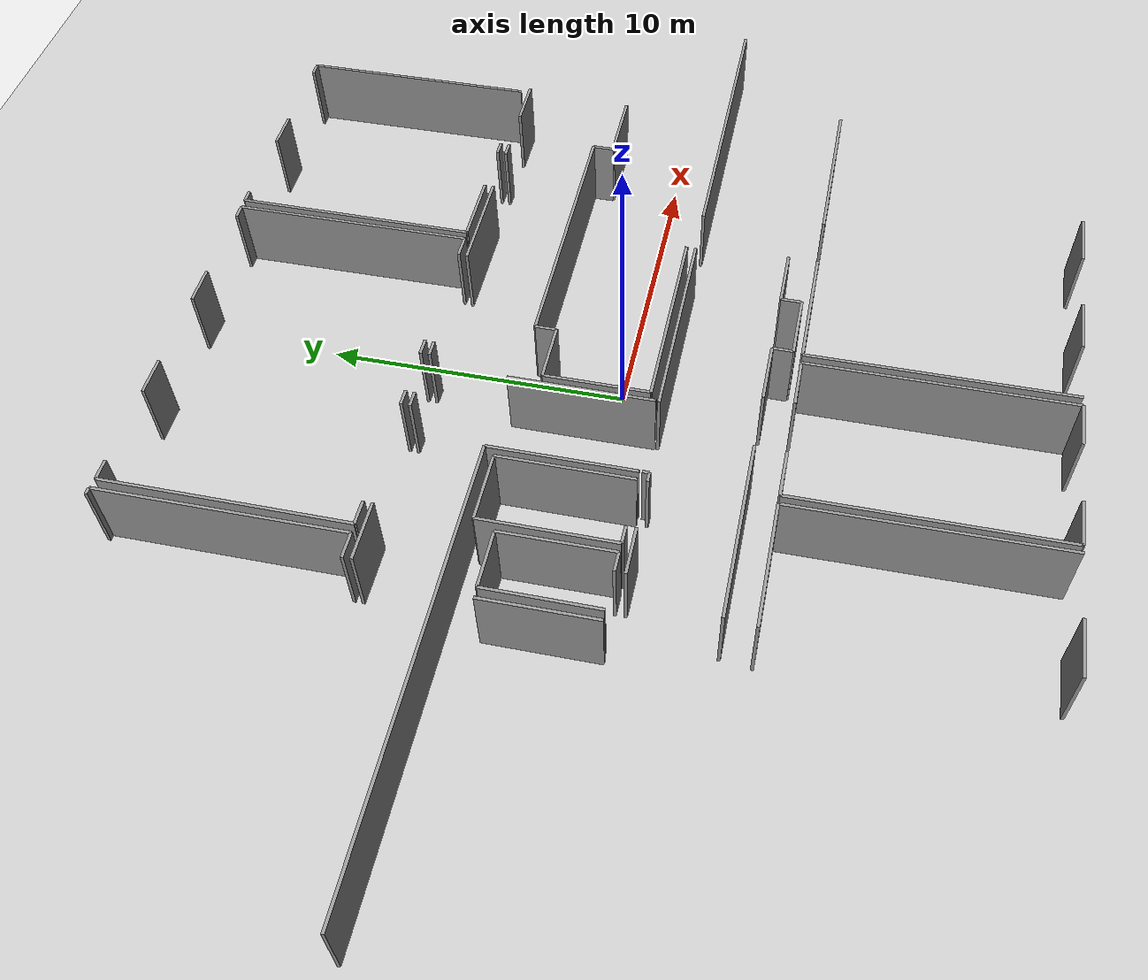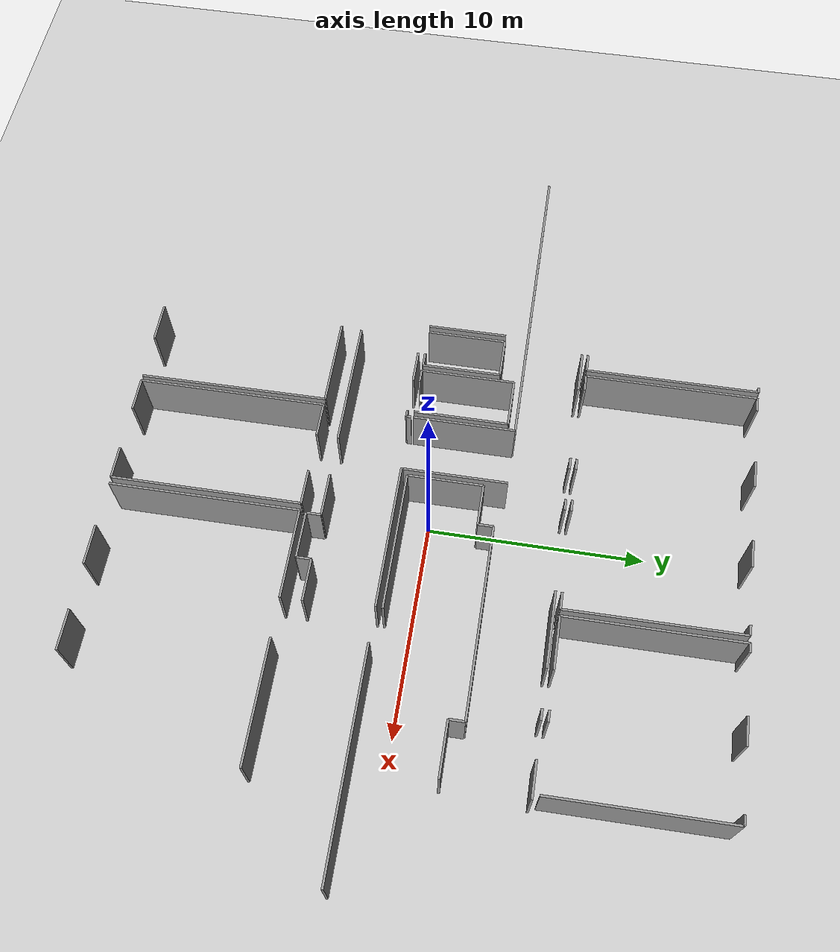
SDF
<sdf version="1.6">
 <world name="default">
  <model name="ground_plane">
   <static>1</static>
   <link name="link">
    <collision name="collision">
     <geometry><plane><normal>0 0 1</normal><size>100 100</size></plane></geometry>
     <surface><friction><ode><mu>100</mu><mu2>50</mu2></ode></friction></surface>
    </collision>
    <visual name="visual">
     <cast_shadows>0</cast_shadows>
     <geometry><plane><normal>0 0 1</normal><size>100 100</size></plane></geometry>
     <material>
      <script><uri>file://media/materials/scripts/gazebo.material</uri><name>Gazebo/Grey</name></script>
     </material>
    </visual>
   </link>
  </model>
  <model name="0510032262_A_40_1_104">
   <static>1</static>
   <link name="Wall_24">
    <collision name="Wall_24_Collision">
     <geometry><box><size>1.98089919726 0.1 2.5</size></box></geometry>
     <pose>0.990449598629 0 1.25 0 0 0</pose>
    </collision>
    <visual name="Wall_24_Visual">
     <pose>0.990449598629 0 1.25 0 0 0</pose>
     <geometry><box><size>1.98089919726 0.1 2.5</size></box></geometry>
     <material>
      <script><uri>file://media/materials/scripts/gazebo.material</uri><name>Gazebo/Grey</name></script>
      <ambient>1 1 1 1</ambient>
     </material>
    </visual>
    <pose>38.3493352794 -8.39673826824 0 0 0 0.0</pose>
   </link>
   <link name="Wall_25">
    <collision name="Wall_25_Collision">
     <geometry><box><size>0.526953707523 0.1 2.5</size></box></geometry>
     <pose>0.263476853761 0 1.25 0 0 0</pose>
    </collision>
    <visual name="Wall_25_Visual">
     <pose>0.263476853761 0 1.25 0 0 0</pose>
     <geometry><box><size>0.526953707523 0.1 2.5</size></box></geometry>
     <material>
      <script><uri>file://media/materials/scripts/gazebo.material</uri><name>Gazebo/Grey</name></script>
      <ambient>1 1 1 1</ambient>
     </material>
    </visual>
    <pose>44.0600310943 -8.39673826824 0 0 0 0.0</pose>
   </link>
   <link name="Wall_26">
    <collision name="Wall_26_Collision">
     <geometry><box><size>0.529999682711 0.1 2.5</size></box></geometry>
     <pose>0.264999841355 0 1.25 0 0 0</pose>
    </collision>
    <visual name="Wall_26_Visual">
     <pose>0.264999841355 0 1.25 0 0 0</pose>
     <geometry><box><size>0.529999682711 0.1 2.5</size></box></geometry>
     <material>
      <script><uri>file://media/materials/scripts/gazebo.material</uri><name>Gazebo/Grey</name></script>
      <ambient>1 1 1 1</ambient>
     </material>
    </visual>
    <pose>46.1923406416 -8.39673826824 0 0 0 0.0</pose>
   </link>
   <link name="Wall_27">
    <collision name="Wall_27_Collision">
     <geometry><box><size>3.52990449599 0.1 2.5</size></box></geometry>
     <pose>1.76495224799 0 1.25 0 0 0</pose>
    </collision>
    <visual name="Wall_27_Visual">
     <pose>1.76495224799 0 1.25 0 0 0</pose>
     <geometry><box><size>3.52990449599 0.1 2.5</size></box></geometry>
     <material>
      <script><uri>file://media/materials/scripts/gazebo.material</uri><name>Gazebo/Grey</name></script>
      <ambient>1 1 1 1</ambient>
     </material>
    </visual>
    <pose>50.6534251356 -8.39673826824 0 0 0 0.0</pose>
   </link>
   <link name="Wall_28">
    <collision name="Wall_28_Collision">
     <geometry><box><size>0.510200843989 0.1 2.5</size></box></geometry>
     <pose>0.255100421994 0 1.25 0 0 0</pose>
    </collision>
    <visual name="Wall_28_Visual">
     <pose>0.255100421994 0 1.25 0 0 0</pose>
     <geometry><box><size>0.510200843989 0.1 2.5</size></box></geometry>
     <material>
      <script><uri>file://media/materials/scripts/gazebo.material</uri><name>Gazebo/Grey</name></script>
      <ambient>1 1 1 1</ambient>
     </material>
    </visual>
    <pose>55.9176317543 -8.39673826824 0 0 0 0.0</pose>
   </link>
   <link name="Wall_29">
    <collision name="Wall_29_Collision">
     <geometry><box><size>1.62718532855 0.1 2.5</size></box></geometry>
     <pose>0.813592664276 0 1.25 0 0 0</pose>
    </collision>
    <visual name="Wall_29_Visual">
     <pose>0.813592664276 0 1.25 0 0 0</pose>
     <geometry><box><size>1.62718532855 0.1 2.5</size></box></geometry>
     <material>
      <script><uri>file://media/materials/scripts/gazebo.material</uri><name>Gazebo/Grey</name></script>
      <ambient>1 1 1 1</ambient>
     </material>
    </visual>
    <pose>58.0388996415 -8.39673826824 0 0 0 0.0</pose>
   </link>
   <link name="Wall_31">
    <collision name="Wall_31_Collision">
     <geometry><box><size>4.78789224863 0.1 2.5</size></box></geometry>
     <pose>2.39394612431 0 1.25 0 0 0</pose>
    </collision>
    <visual name="Wall_31_Visual">
     <pose>2.39394612431 0 1.25 0 0 0</pose>
     <geometry><box><size>4.78789224863 0.1 2.5</size></box></geometry>
     <material>
      <script><uri>file://media/materials/scripts/gazebo.material</uri><name>Gazebo/Grey</name></script>
      <ambient>1 1 1 1</ambient>
     </material>
    </visual>
    <pose>45.7679347654 -11.0591744138 0 0 0 -1.57079632679</pose>
   </link>
   <link name="Wall_32">
    <collision name="Wall_32_Collision">
     <geometry><box><size>4.77685058857 0.1 2.5</size></box></geometry>
     <pose>2.38842529429 0 1.25 0 0 0</pose>
    </collision>
    <visual name="Wall_32_Visual">
     <pose>2.38842529429 0 1.25 0 0 0</pose>
     <geometry><box><size>4.77685058857 0.1 2.5</size></box></geometry>
     <material>
      <script><uri>file://media/materials/scripts/gazebo.material</uri><name>Gazebo/Grey</name></script>
      <ambient>1 1 1 1</ambient>
     </material>
    </visual>
    <pose>43.0049814386 -15.8470666624 0 0 0 1.57079632679</pose>
   </link>
   <link name="Wall_33">
    <collision name="Wall_33_Collision">
     <geometry><box><size>14.8435447536 0.1 2.5</size></box></geometry>
     <pose>7.42177237681 0 1.25 0 0 0</pose>
    </collision>
    <visual name="Wall_33_Visual">
     <pose>7.42177237681 0 1.25 0 0 0</pose>
     <geometry><box><size>14.8435447536 0.1 2.5</size></box></geometry>
     <material>
      <script><uri>file://media/materials/scripts/gazebo.material</uri><name>Gazebo/Grey</name></script>
      <ambient>1 1 1 1</ambient>
     </material>
    </visual>
    <pose>43.0049814386 -11.0702160739 0 0 0 3.14159265359</pose>
   </link>
   <link name="Wall_60">
    <collision name="Wall_60_Collision">
     <geometry><box><size>0.856172859092 0.1 2.5</size></box></geometry>
     <pose>0.428086429546 0 1.25 0 0 0</pose>
    </collision>
    <visual name="Wall_60_Visual">
     <pose>0.428086429546 0 1.25 0 0 0</pose>
     <geometry><box><size>0.856172859092 0.1 2.5</size></box></geometry>
     <material>
      <script><uri>file://media/materials/scripts/gazebo.material</uri><name>Gazebo/Grey</name></script>
      <ambient>1 1 1 1</ambient>
     </material>
    </visual>
    <pose>39.2039851509 -8.1105435162 0 0 0 3.14159265359</pose>
   </link>
   <link name="Wall_66">
    <collision name="Wall_66_Collision">
     <geometry><box><size>0.233651680046 0.1 2.5</size></box></geometry>
     <pose>0.116825840023 0 1.25 0 0 0</pose>
    </collision>
    <visual name="Wall_66_Visual">
     <pose>0.116825840023 0 1.25 0 0 0</pose>
     <geometry><box><size>0.233651680046 0.1 2.5</size></box></geometry>
     <material>
      <script><uri>file://media/materials/scripts/gazebo.material</uri><name>Gazebo/Grey</name></script>
      <ambient>1 1 1 1</ambient>
     </material>
    </visual>
    <pose>38.9457118381 -0.0 0 0 0 0.0</pose>
   </link>
   <link name="Wall_67">
    <collision name="Wall_67_Collision">
     <geometry><box><size>8.11058088875 0.1 2.5</size></box></geometry>
     <pose>4.05529044437 0 1.25 0 0 0</pose>
    </collision>
    <visual name="Wall_67_Visual">
     <pose>4.05529044437 0 1.25 0 0 0</pose>
     <geometry><box><size>8.11058088875 0.1 2.5</size></box></geometry>
     <material>
      <script><uri>file://media/materials/scripts/gazebo.material</uri><name>Gazebo/Grey</name></script>
      <ambient>1 1 1 1</ambient>
     </material>
    </visual>
    <pose>39.1793635181 -0.0 0 0 0 -1.56776057992</pose>
   </link>
   <link name="Wall_68">
    <collision name="Wall_68_Collision">
     <geometry><box><size>0.77723133547 0.1 2.5</size></box></geometry>
     <pose>0.388615667735 0 1.25 0 0 0</pose>
    </collision>
    <visual name="Wall_68_Visual">
     <pose>0.388615667735 0 1.25 0 0 0</pose>
     <geometry><box><size>0.77723133547 0.1 2.5</size></box></geometry>
     <material>
      <script><uri>file://media/materials/scripts/gazebo.material</uri><name>Gazebo/Grey</name></script>
      <ambient>1 1 1 1</ambient>
     </material>
    </visual>
    <pose>51.4601008979 -8.10343624076 0 0 0 3.14159265359</pose>
   </link>
   <link name="Wall_69">
    <collision name="Wall_69_Collision">
     <geometry><box><size>0.547006377511 0.1 2.5</size></box></geometry>
     <pose>0.273503188755 0 1.25 0 0 0</pose>
    </collision>
    <visual name="Wall_69_Visual">
     <pose>0.273503188755 0 1.25 0 0 0</pose>
     <geometry><box><size>0.547006377511 0.1 2.5</size></box></geometry>
     <material>
      <script><uri>file://media/materials/scripts/gazebo.material</uri><name>Gazebo/Grey</name></script>
      <ambient>1 1 1 1</ambient>
     </material>
    </visual>
    <pose>46.7290668528 -8.10343624076 0 0 0 3.14159265359</pose>
   </link>
   <link name="Wall_70">
    <collision name="Wall_70_Collision">
     <geometry><box><size>0.537487705048 0.1 2.5</size></box></geometry>
     <pose>0.268743852524 0 1.25 0 0 0</pose>
    </collision>
    <visual name="Wall_70_Visual">
     <pose>0.268743852524 0 1.25 0 0 0</pose>
     <geometry><box><size>0.537487705048 0.1 2.5</size></box></geometry>
     <material>
      <script><uri>file://media/materials/scripts/gazebo.material</uri><name>Gazebo/Grey</name></script>
      <ambient>1 1 1 1</ambient>
     </material>
    </visual>
    <pose>44.6081797125 -8.10343624076 0 0 0 3.14159265359</pose>
   </link>
   <link name="Wall_71">
    <collision name="Wall_71_Collision">
     <geometry><box><size>0.814036868991 0.1 2.5</size></box></geometry>
     <pose>0.407018434496 0 1.25 0 0 0</pose>
    </collision>
    <visual name="Wall_71_Visual">
     <pose>0.407018434496 0 1.25 0 0 0</pose>
     <geometry><box><size>0.814036868991 0.1 2.5</size></box></geometry>
     <material>
      <script><uri>file://media/materials/scripts/gazebo.material</uri><name>Gazebo/Grey</name></script>
      <ambient>1 1 1 1</ambient>
     </material>
    </visual>
    <pose>40.3367071739 -8.10343624076 0 0 0 3.14159265359</pose>
   </link>
   <link name="Wall_72">
    <collision name="Wall_72_Collision">
     <geometry><box><size>8.05470063775 0.1 2.5</size></box></geometry>
     <pose>4.02735031888 0 1.25 0 0 0</pose>
    </collision>
    <visual name="Wall_72_Visual">
     <pose>4.02735031888 0 1.25 0 0 0</pose>
     <geometry><box><size>8.05470063775 0.1 2.5</size></box></geometry>
     <material>
      <script><uri>file://media/materials/scripts/gazebo.material</uri><name>Gazebo/Grey</name></script>
      <ambient>1 1 1 1</ambient>
     </material>
    </visual>
    <pose>39.5226703049 -8.10343624076 0 0 0 1.57079632679</pose>
   </link>
   <link name="Wall_73">
    <collision name="Wall_73_Collision">
     <geometry><box><size>0.687755814322 0.1 2.5</size></box></geometry>
     <pose>0.343877907161 0 1.25 0 0 0</pose>
    </collision>
    <visual name="Wall_73_Visual">
     <pose>0.343877907161 0 1.25 0 0 0</pose>
     <geometry><box><size>0.687755814322 0.1 2.5</size></box></geometry>
     <material>
      <script><uri>file://media/materials/scripts/gazebo.material</uri><name>Gazebo/Grey</name></script>
      <ambient>1 1 1 1</ambient>
     </material>
    </visual>
    <pose>39.5226703049 -0.0487356030079 0 0 0 0.0</pose>
   </link>
   <link name="Wall_74">
    <collision name="Wall_74_Collision">
     <geometry><box><size>1.2682679189 0.1 2.5</size></box></geometry>
     <pose>0.63413395945 0 1.25 0 0 0</pose>
    </collision>
    <visual name="Wall_74_Visual">
     <pose>0.63413395945 0 1.25 0 0 0</pose>
     <geometry><box><size>1.2682679189 0.1 2.5</size></box></geometry>
     <material>
      <script><uri>file://media/materials/scripts/gazebo.material</uri><name>Gazebo/Grey</name></script>
      <ambient>1 1 1 1</ambient>
     </material>
    </visual>
    <pose>42.9490116445 -0.0487356030079 0 0 0 0.0</pose>
   </link>
   <link name="Wall_75">
    <collision name="Wall_75_Collision">
     <geometry><box><size>1.28095948218 0.1 2.5</size></box></geometry>
     <pose>0.640479741092 0 1.25 0 0 0</pose>
    </collision>
    <visual name="Wall_75_Visual">
     <pose>0.640479741092 0 1.25 0 0 0</pose>
     <geometry><box><size>1.28095948218 0.1 2.5</size></box></geometry>
     <material>
      <script><uri>file://media/materials/scripts/gazebo.material</uri><name>Gazebo/Grey</name></script>
      <ambient>1 1 1 1</ambient>
     </material>
    </visual>
    <pose>46.9431735254 -0.0487356030079 0 0 0 0.0</pose>
   </link>
   <link name="Wall_76">
    <collision name="Wall_76_Collision">
     <geometry><box><size>0.485833042485 0.1 2.5</size></box></geometry>
     <pose>0.242916521243 0 1.25 0 0 0</pose>
    </collision>
    <visual name="Wall_76_Visual">
     <pose>0.242916521243 0 1.25 0 0 0</pose>
     <geometry><box><size>0.485833042485 0.1 2.5</size></box></geometry>
     <material>
      <script><uri>file://media/materials/scripts/gazebo.material</uri><name>Gazebo/Grey</name></script>
      <ambient>1 1 1 1</ambient>
     </material>
    </visual>
    <pose>50.9311165403 -0.0487356030079 0 0 0 0.0</pose>
   </link>
   <link name="Wall_77">
    <collision name="Wall_77_Collision">
     <geometry><box><size>8.05481622384 0.1 2.5</size></box></geometry>
     <pose>4.02740811192 0 1.25 0 0 0</pose>
    </collision>
    <visual name="Wall_77_Visual">
     <pose>4.02740811192 0 1.25 0 0 0</pose>
     <geometry><box><size>8.05481622384 0.1 2.5</size></box></geometry>
     <material>
      <script><uri>file://media/materials/scripts/gazebo.material</uri><name>Gazebo/Grey</name></script>
      <ambient>1 1 1 1</ambient>
     </material>
    </visual>
    <pose>51.4169495828 -0.0487356030079 0 0 0 -1.5654390945</pose>
   </link>
   <link name="Wall_79">
    <collision name="Wall_79_Collision">
     <geometry><box><size>0.508931687661 0.1 2.5</size></box></geometry>
     <pose>0.25446584383 0 1.25 0 0 0</pose>
    </collision>
    <visual name="Wall_79_Visual">
     <pose>0.25446584383 0 1.25 0 0 0</pose>
     <geometry><box><size>0.508931687661 0.1 2.5</size></box></geometry>
     <material>
      <script><uri>file://media/materials/scripts/gazebo.material</uri><name>Gazebo/Grey</name></script>
      <ambient>1 1 1 1</ambient>
     </material>
    </visual>
    <pose>56.4365897769 -8.09379065266 0 0 0 3.14159265359</pose>
   </link>
   <link name="Wall_80">
    <collision name="Wall_80_Collision">
     <geometry><box><size>2.41964653996 0.1 2.5</size></box></geometry>
     <pose>1.20982326998 0 1.25 0 0 0</pose>
    </collision>
    <visual name="Wall_80_Visual">
     <pose>1.20982326998 0 1.25 0 0 0</pose>
     <geometry><box><size>2.41964653996 0.1 2.5</size></box></geometry>
     <material>
      <script><uri>file://media/materials/scripts/gazebo.material</uri><name>Gazebo/Grey</name></script>
      <ambient>1 1 1 1</ambient>
     </material>
    </visual>
    <pose>54.1790145001 -8.09379065266 0 0 0 3.14159265359</pose>
   </link>
   <link name="Wall_81">
    <collision name="Wall_81_Collision">
     <geometry><box><size>8.05203540946 0.1 2.5</size></box></geometry>
     <pose>4.02601770473 0 1.25 0 0 0</pose>
    </collision>
    <visual name="Wall_81_Visual">
     <pose>4.02601770473 0 1.25 0 0 0</pose>
     <geometry><box><size>8.05203540946 0.1 2.5</size></box></geometry>
     <material>
      <script><uri>file://media/materials/scripts/gazebo.material</uri><name>Gazebo/Grey</name></script>
      <ambient>1 1 1 1</ambient>
     </material>
    </visual>
    <pose>51.7593679601 -8.09379065266 0 0 0 1.57079632679</pose>
   </link>
   <link name="Wall_82">
    <collision name="Wall_82_Collision">
     <geometry><box><size>0.429736332773 0.1 2.5</size></box></geometry>
     <pose>0.214868166386 0 1.25 0 0 0</pose>
    </collision>
    <visual name="Wall_82_Visual">
     <pose>0.214868166386 0 1.25 0 0 0</pose>
     <geometry><box><size>0.429736332773 0.1 2.5</size></box></geometry>
     <material>
      <script><uri>file://media/materials/scripts/gazebo.material</uri><name>Gazebo/Grey</name></script>
      <ambient>1 1 1 1</ambient>
     </material>
    </visual>
    <pose>51.7593679601 -0.0417552432021 0 0 0 0.0</pose>
   </link>
   <link name="Wall_83">
    <collision name="Wall_83_Collision">
     <geometry><box><size>1.26839483453 0.1 2.5</size></box></geometry>
     <pose>0.634197417267 0 1.25 0 0 0</pose>
    </collision>
    <visual name="Wall_83_Visual">
     <pose>0.634197417267 0 1.25 0 0 0</pose>
     <geometry><box><size>1.26839483453 0.1 2.5</size></box></geometry>
     <material>
      <script><uri>file://media/materials/scripts/gazebo.material</uri><name>Gazebo/Grey</name></script>
      <ambient>1 1 1 1</ambient>
     </material>
    </visual>
    <pose>54.9345432624 -0.0417552432021 0 0 0 0.0</pose>
   </link>
   <link name="Wall_84">
    <collision name="Wall_84_Collision">
     <geometry><box><size>0.448012183901 0.1 2.5</size></box></geometry>
     <pose>0.22400609195 0 1.25 0 0 0</pose>
    </collision>
    <visual name="Wall_84_Visual">
     <pose>0.22400609195 0 1.25 0 0 0</pose>
     <geometry><box><size>0.448012183901 0.1 2.5</size></box></geometry>
     <material>
      <script><uri>file://media/materials/scripts/gazebo.material</uri><name>Gazebo/Grey</name></script>
      <ambient>1 1 1 1</ambient>
     </material>
    </visual>
    <pose>58.9510422946 -0.0417552432021 0 0 0 0.0</pose>
   </link>
   <link name="Wall_85">
    <collision name="Wall_85_Collision">
     <geometry><box><size>8.0521643175 0.1 2.5</size></box></geometry>
     <pose>4.02608215875 0 1.25 0 0 0</pose>
    </collision>
    <visual name="Wall_85_Visual">
     <pose>4.02608215875 0 1.25 0 0 0</pose>
     <geometry><box><size>8.0521643175 0.1 2.5</size></box></geometry>
     <material>
      <script><uri>file://media/materials/scripts/gazebo.material</uri><name>Gazebo/Grey</name></script>
      <ambient>1 1 1 1</ambient>
     </material>
    </visual>
    <pose>59.3990544785 -0.0417552432021 0 0 0 -1.56513785368</pose>
   </link>
   <link name="Wall_138">
    <collision name="Wall_138_Collision">
     <geometry><box><size>1.58314560396 0.1 2.5</size></box></geometry>
     <pose>0.79157280198 0 1.25 0 0 0</pose>
    </collision>
    <visual name="Wall_138_Visual">
     <pose>0.79157280198 0 1.25 0 0 0</pose>
     <geometry><box><size>1.58314560396 0.1 2.5</size></box></geometry>
     <material>
      <script><uri>file://media/materials/scripts/gazebo.material</uri><name>Gazebo/Grey</name></script>
      <ambient>1 1 1 1</ambient>
     </material>
    </visual>
    <pose>39.4357330964 -16.1646095758 0 0 0 0.0</pose>
   </link>
   <link name="Wall_139">
    <collision name="Wall_139_Collision">
     <geometry><box><size>0.319446647841 0.1 2.5</size></box></geometry>
     <pose>0.15972332392 0 1.25 0 0 0</pose>
    </collision>
    <visual name="Wall_139_Visual">
     <pose>0.15972332392 0 1.25 0 0 0</pose>
     <geometry><box><size>0.319446647841 0.1 2.5</size></box></geometry>
     <material>
      <script><uri>file://media/materials/scripts/gazebo.material</uri><name>Gazebo/Grey</name></script>
      <ambient>1 1 1 1</ambient>
     </material>
    </visual>
    <pose>42.6965764508 -16.1646095758 0 0 0 0.0</pose>
   </link>
   <link name="Wall_140">
    <collision name="Wall_140_Collision">
     <geometry><box><size>0.224386838849 0.1 2.5</size></box></geometry>
     <pose>0.112193419424 0 1.25 0 0 0</pose>
    </collision>
    <visual name="Wall_140_Visual">
     <pose>0.112193419424 0 1.25 0 0 0</pose>
     <geometry><box><size>0.224386838849 0.1 2.5</size></box></geometry>
     <material>
      <script><uri>file://media/materials/scripts/gazebo.material</uri><name>Gazebo/Grey</name></script>
      <ambient>1 1 1 1</ambient>
     </material>
    </visual>
    <pose>43.0160230986 -16.1646095758 0 0 0 1.57079632679</pose>
   </link>
   <link name="Wall_141">
    <collision name="Wall_141_Collision">
     <geometry><box><size>6.81778088016 0.1 2.5</size></box></geometry>
     <pose>3.40889044008 0 1.25 0 0 0</pose>
    </collision>
    <visual name="Wall_141_Visual">
     <pose>3.40889044008 0 1.25 0 0 0</pose>
     <geometry><box><size>6.81778088016 0.1 2.5</size></box></geometry>
     <material>
      <script><uri>file://media/materials/scripts/gazebo.material</uri><name>Gazebo/Grey</name></script>
      <ambient>1 1 1 1</ambient>
     </material>
    </visual>
    <pose>45.7384903385 -15.9402227369 0 0 0 0.0</pose>
   </link>
   <link name="Wall_142">
    <collision name="Wall_142_Collision">
     <geometry><box><size>10.1092109021 0.1 2.5</size></box></geometry>
     <pose>5.05460545103 0 1.25 0 0 0</pose>
    </collision>
    <visual name="Wall_142_Visual">
     <pose>5.05460545103 0 1.25 0 0 0</pose>
     <geometry><box><size>10.1092109021 0.1 2.5</size></box></geometry>
     <material>
      <script><uri>file://media/materials/scripts/gazebo.material</uri><name>Gazebo/Grey</name></script>
      <ambient>1 1 1 1</ambient>
     </material>
    </visual>
    <pose>54.1735571279 -15.9402227369 0 0 0 0.0</pose>
   </link>
   <link name="Wall_165">
    <collision name="Wall_165_Collision">
     <geometry><box><size>1.96643081512 0.1 2.5</size></box></geometry>
     <pose>0.983215407558 0 1.25 0 0 0</pose>
    </collision>
    <visual name="Wall_165_Visual">
     <pose>0.983215407558 0 1.25 0 0 0</pose>
     <geometry><box><size>1.96643081512 0.1 2.5</size></box></geometry>
     <material>
      <script><uri>file://media/materials/scripts/gazebo.material</uri><name>Gazebo/Grey</name></script>
      <ambient>1 1 1 1</ambient>
     </material>
    </visual>
    <pose>52.766316591 -19.0931878034 0 0 0 3.14159265359</pose>
   </link>
   <link name="Wall_166">
    <collision name="Wall_166_Collision">
     <geometry><box><size>0.685725164197 0.1 2.5</size></box></geometry>
     <pose>0.342862582099 0 1.25 0 0 0</pose>
    </collision>
    <visual name="Wall_166_Visual">
     <pose>0.342862582099 0 1.25 0 0 0</pose>
     <geometry><box><size>0.685725164197 0.1 2.5</size></box></geometry>
     <material>
      <script><uri>file://media/materials/scripts/gazebo.material</uri><name>Gazebo/Grey</name></script>
      <ambient>1 1 1 1</ambient>
     </material>
    </visual>
    <pose>50.7998857759 -19.0931878034 0 0 0 -1.57079632679</pose>
   </link>
   <link name="Wall_167">
    <collision name="Wall_167_Collision">
     <geometry><box><size>2.17698384999 0.1 2.5</size></box></geometry>
     <pose>1.08849192499 0 1.25 0 0 0</pose>
    </collision>
    <visual name="Wall_167_Visual">
     <pose>1.08849192499 0 1.25 0 0 0</pose>
     <geometry><box><size>2.17698384999 0.1 2.5</size></box></geometry>
     <material>
      <script><uri>file://media/materials/scripts/gazebo.material</uri><name>Gazebo/Grey</name></script>
      <ambient>1 1 1 1</ambient>
     </material>
    </visual>
    <pose>50.7998857759 -19.7789129676 0 0 0 3.14159265359</pose>
   </link>
   <link name="Wall_168">
    <collision name="Wall_168_Collision">
     <geometry><box><size>0.689278801916 0.1 2.5</size></box></geometry>
     <pose>0.344639400958 0 1.25 0 0 0</pose>
    </collision>
    <visual name="Wall_168_Visual">
     <pose>0.344639400958 0 1.25 0 0 0</pose>
     <geometry><box><size>0.689278801916 0.1 2.5</size></box></geometry>
     <material>
      <script><uri>file://media/materials/scripts/gazebo.material</uri><name>Gazebo/Grey</name></script>
      <ambient>1 1 1 1</ambient>
     </material>
    </visual>
    <pose>48.6229019259 -19.7789129676 0 0 0 1.57079632679</pose>
   </link>
   <link name="Wall_169">
    <collision name="Wall_169_Collision">
     <geometry><box><size>2.06085604594 0.1 2.5</size></box></geometry>
     <pose>1.03042802297 0 1.25 0 0 0</pose>
    </collision>
    <visual name="Wall_169_Visual">
     <pose>1.03042802297 0 1.25 0 0 0</pose>
     <geometry><box><size>2.06085604594 0.1 2.5</size></box></geometry>
     <material>
      <script><uri>file://media/materials/scripts/gazebo.material</uri><name>Gazebo/Grey</name></script>
      <ambient>1 1 1 1</ambient>
     </material>
    </visual>
    <pose>48.6229019259 -19.0896341657 0 0 0 3.14159265359</pose>
   </link>
   <link name="Wall_170">
    <collision name="Wall_170_Collision">
     <geometry><box><size>6.07367452486 0.1 2.5</size></box></geometry>
     <pose>3.03683726243 0 1.25 0 0 0</pose>
    </collision>
    <visual name="Wall_170_Visual">
     <pose>3.03683726243 0 1.25 0 0 0</pose>
     <geometry><box><size>6.07367452486 0.1 2.5</size></box></geometry>
     <material>
      <script><uri>file://media/materials/scripts/gazebo.material</uri><name>Gazebo/Grey</name></script>
      <ambient>1 1 1 1</ambient>
     </material>
    </visual>
    <pose>44.646381318 -19.0896341657 0 0 0 3.14159265359</pose>
   </link>
   <link name="Wall_191">
    <collision name="Wall_191_Collision">
     <geometry><box><size>3.72017224782 0.1 2.5</size></box></geometry>
     <pose>1.86008612391 0 1.25 0 0 0</pose>
    </collision>
    <visual name="Wall_191_Visual">
     <pose>1.86008612391 0 1.25 0 0 0</pose>
     <geometry><box><size>3.72017224782 0.1 2.5</size></box></geometry>
     <material>
      <script><uri>file://media/materials/scripts/gazebo.material</uri><name>Gazebo/Grey</name></script>
      <ambient>1 1 1 1</ambient>
     </material>
    </visual>
    <pose>37.8232699813 -12.1435415807 0 0 0 -1.56741888331</pose>
   </link>
   <link name="Wall_192">
    <collision name="Wall_192_Collision">
     <geometry><box><size>0.653107846559 0.1 2.5</size></box></geometry>
     <pose>0.326553923279 0 1.25 0 0 0</pose>
    </collision>
    <visual name="Wall_192_Visual">
     <pose>0.326553923279 0 1.25 0 0 0</pose>
     <geometry><box><size>0.653107846559 0.1 2.5</size></box></geometry>
     <material>
      <script><uri>file://media/materials/scripts/gazebo.material</uri><name>Gazebo/Grey</name></script>
      <ambient>1 1 1 1</ambient>
     </material>
    </visual>
    <pose>40.0965827966 -15.8314560396 0 0 0 3.14159265359</pose>
   </link>
   <link name="Wall_193">
    <collision name="Wall_193_Collision">
     <geometry><box><size>3.68118793032 0.1 2.5</size></box></geometry>
     <pose>1.84059396516 0 1.25 0 0 0</pose>
    </collision>
    <visual name="Wall_193_Visual">
     <pose>1.84059396516 0 1.25 0 0 0</pose>
     <geometry><box><size>3.68118793032 0.1 2.5</size></box></geometry>
     <material>
      <script><uri>file://media/materials/scripts/gazebo.material</uri><name>Gazebo/Grey</name></script>
      <ambient>1 1 1 1</ambient>
     </material>
    </visual>
    <pose>38.1696227433 -15.8314560396 0 0 0 1.57079632679</pose>
   </link>
   <link name="Wall_194">
    <collision name="Wall_194_Collision">
     <geometry><box><size>1.91096868357 0.1 2.5</size></box></geometry>
     <pose>0.955484341784 0 1.25 0 0 0</pose>
    </collision>
    <visual name="Wall_194_Visual">
     <pose>0.955484341784 0 1.25 0 0 0</pose>
     <geometry><box><size>1.91096868357 0.1 2.5</size></box></geometry>
     <material>
      <script><uri>file://media/materials/scripts/gazebo.material</uri><name>Gazebo/Grey</name></script>
      <ambient>1 1 1 1</ambient>
     </material>
    </visual>
    <pose>38.1696227433 -12.1502681093 0 0 0 0.0</pose>
   </link>
   <link name="Wall_195">
    <collision name="Wall_195_Collision">
     <geometry><box><size>3.68122266404 0.1 2.5</size></box></geometry>
     <pose>1.84061133202 0 1.25 0 0 0</pose>
    </collision>
    <visual name="Wall_195_Visual">
     <pose>1.84061133202 0 1.25 0 0 0</pose>
     <geometry><box><size>3.68122266404 0.1 2.5</size></box></geometry>
     <material>
      <script><uri>file://media/materials/scripts/gazebo.material</uri><name>Gazebo/Grey</name></script>
      <ambient>1 1 1 1</ambient>
     </material>
    </visual>
    <pose>40.0805914268 -12.1502681093 0 0 0 -1.56645227551</pose>
   </link>
   <link name="Wall_196">
    <collision name="Wall_196_Collision">
     <geometry><box><size>0.605895231145 0.1 2.5</size></box></geometry>
     <pose>0.302947615573 0 1.25 0 0 0</pose>
    </collision>
    <visual name="Wall_196_Visual">
     <pose>0.302947615573 0 1.25 0 0 0</pose>
     <geometry><box><size>0.605895231145 0.1 2.5</size></box></geometry>
     <material>
      <script><uri>file://media/materials/scripts/gazebo.material</uri><name>Gazebo/Grey</name></script>
      <ambient>1 1 1 1</ambient>
     </material>
    </visual>
    <pose>41.0097407748 -15.8501126376 0 0 0 3.14159265359</pose>
   </link>
   <link name="Wall_197">
    <collision name="Wall_197_Collision">
     <geometry><box><size>4.40981057842 0.1 2.5</size></box></geometry>
     <pose>2.20490528921 0 1.25 0 0 0</pose>
    </collision>
    <visual name="Wall_197_Visual">
     <pose>2.20490528921 0 1.25 0 0 0</pose>
     <geometry><box><size>4.40981057842 0.1 2.5</size></box></geometry>
     <material>
      <script><uri>file://media/materials/scripts/gazebo.material</uri><name>Gazebo/Grey</name></script>
      <ambient>1 1 1 1</ambient>
     </material>
    </visual>
    <pose>40.4038455437 -15.8501126376 0 0 0 1.57079632679</pose>
   </link>
   <link name="Wall_198">
    <collision name="Wall_198_Collision">
     <geometry><box><size>2.30364565155 0.1 2.5</size></box></geometry>
     <pose>1.15182282578 0 1.25 0 0 0</pose>
    </collision>
    <visual name="Wall_198_Visual">
     <pose>1.15182282578 0 1.25 0 0 0</pose>
     <geometry><box><size>2.30364565155 0.1 2.5</size></box></geometry>
     <material>
      <script><uri>file://media/materials/scripts/gazebo.material</uri><name>Gazebo/Grey</name></script>
      <ambient>1 1 1 1</ambient>
     </material>
    </visual>
    <pose>40.4038455437 -11.4403020592 0 0 0 0.0</pose>
   </link>
   <link name="Wall_199">
    <collision name="Wall_199_Collision">
     <geometry><box><size>4.40981088707 0.1 2.5</size></box></geometry>
     <pose>2.20490544353 0 1.25 0 0 0</pose>
    </collision>
    <visual name="Wall_199_Visual">
     <pose>2.20490544353 0 1.25 0 0 0</pose>
     <geometry><box><size>4.40981088707 0.1 2.5</size></box></geometry>
     <material>
      <script><uri>file://media/materials/scripts/gazebo.material</uri><name>Gazebo/Grey</name></script>
      <ambient>1 1 1 1</ambient>
     </material>
    </visual>
    <pose>42.7074911952 -11.4403020592 0 0 0 -1.57042218303</pose>
   </link>
   <link name="Wall_200">
    <collision name="Wall_200_Collision">
     <geometry><box><size>1.86147158676 0.1 2.5</size></box></geometry>
     <pose>0.930735793381 0 1.25 0 0 0</pose>
    </collision>
    <visual name="Wall_200_Visual">
     <pose>0.930735793381 0 1.25 0 0 0</pose>
     <geometry><box><size>1.86147158676 0.1 2.5</size></box></geometry>
     <material>
      <script><uri>file://media/materials/scripts/gazebo.material</uri><name>Gazebo/Grey</name></script>
      <ambient>1 1 1 1</ambient>
     </material>
    </visual>
    <pose>40.5386299457 -28.8788907574 0 0 0 3.14159265359</pose>
   </link>
   <link name="Wall_205">
    <collision name="Wall_205_Collision">
     <geometry><box><size>4.20078053114 0.1 2.5</size></box></geometry>
     <pose>2.10039026557 0 1.25 0 0 0</pose>
    </collision>
    <visual name="Wall_205_Visual">
     <pose>2.10039026557 0 1.25 0 0 0</pose>
     <geometry><box><size>4.20078053114 0.1 2.5</size></box></geometry>
     <material>
      <script><uri>file://media/materials/scripts/gazebo.material</uri><name>Gazebo/Grey</name></script>
      <ambient>1 1 1 1</ambient>
     </material>
    </visual>
    <pose>38.464574674 -20.0779261986 0 0 0 0.0</pose>
   </link>
   <link name="Wall_206">
    <collision name="Wall_206_Collision">
     <geometry><box><size>8.79587063446 0.1 2.5</size></box></geometry>
     <pose>4.39793531723 0 1.25 0 0 0</pose>
    </collision>
    <visual name="Wall_206_Visual">
     <pose>4.39793531723 0 1.25 0 0 0</pose>
     <geometry><box><size>8.79587063446 0.1 2.5</size></box></geometry>
     <material>
      <script><uri>file://media/materials/scripts/gazebo.material</uri><name>Gazebo/Grey</name></script>
      <ambient>1 1 1 1</ambient>
     </material>
    </visual>
    <pose>42.6653552051 -20.0779261986 0 0 0 -1.56580387145</pose>
   </link>
   <link name="Wall_207">
    <collision name="Wall_207_Collision">
     <geometry><box><size>1.522987594 0.1 2.5</size></box></geometry>
     <pose>0.761493796998 0 1.25 0 0 0</pose>
    </collision>
    <visual name="Wall_207_Visual">
     <pose>0.761493796998 0 1.25 0 0 0</pose>
     <geometry><box><size>1.522987594 0.1 2.5</size></box></geometry>
     <material>
      <script><uri>file://media/materials/scripts/gazebo.material</uri><name>Gazebo/Grey</name></script>
      <ambient>1 1 1 1</ambient>
     </material>
    </visual>
    <pose>48.2030650125 -28.8604879906 0 0 0 3.14159265359</pose>
   </link>
   <link name="Wall_208">
    <collision name="Wall_208_Collision">
     <geometry><box><size>1.56486975283 0.1 2.5</size></box></geometry>
     <pose>0.782434876416 0 1.25 0 0 0</pose>
    </collision>
    <visual name="Wall_208_Visual">
     <pose>0.782434876416 0 1.25 0 0 0</pose>
     <geometry><box><size>1.56486975283 0.1 2.5</size></box></geometry>
     <material>
      <script><uri>file://media/materials/scripts/gazebo.material</uri><name>Gazebo/Grey</name></script>
      <ambient>1 1 1 1</ambient>
     </material>
    </visual>
    <pose>44.5391376083 -28.8604879906 0 0 0 3.14159265359</pose>
   </link>
   <link name="Wall_209">
    <collision name="Wall_209_Collision">
     <geometry><box><size>8.77139321636 0.1 2.5</size></box></geometry>
     <pose>4.38569660818 0 1.25 0 0 0</pose>
    </collision>
    <visual name="Wall_209_Visual">
     <pose>4.38569660818 0 1.25 0 0 0</pose>
     <geometry><box><size>8.77139321636 0.1 2.5</size></box></geometry>
     <material>
      <script><uri>file://media/materials/scripts/gazebo.material</uri><name>Gazebo/Grey</name></script>
      <ambient>1 1 1 1</ambient>
     </material>
    </visual>
    <pose>42.9742678554 -28.8604879906 0 0 0 1.57079632679</pose>
   </link>
   <link name="Wall_210">
    <collision name="Wall_210_Collision">
     <geometry><box><size>1.64685725164 0.1 2.5</size></box></geometry>
     <pose>0.823428625821 0 1.25 0 0 0</pose>
    </collision>
    <visual name="Wall_210_Visual">
     <pose>0.823428625821 0 1.25 0 0 0</pose>
     <geometry><box><size>1.64685725164 0.1 2.5</size></box></geometry>
     <material>
      <script><uri>file://media/materials/scripts/gazebo.material</uri><name>Gazebo/Grey</name></script>
      <ambient>1 1 1 1</ambient>
     </material>
    </visual>
    <pose>42.9742678554 -20.0890947742 0 0 0 0.0</pose>
   </link>
   <link name="Wall_211">
    <collision name="Wall_211_Collision">
     <geometry><box><size>1.68429736333 0.1 2.5</size></box></geometry>
     <pose>0.842148681664 0 1.25 0 0 0</pose>
    </collision>
    <visual name="Wall_211_Visual">
     <pose>0.842148681664 0 1.25 0 0 0</pose>
     <geometry><box><size>1.68429736333 0.1 2.5</size></box></geometry>
     <material>
      <script><uri>file://media/materials/scripts/gazebo.material</uri><name>Gazebo/Grey</name></script>
      <ambient>1 1 1 1</ambient>
     </material>
    </visual>
    <pose>46.515721674 -20.0890947742 0 0 0 0.0</pose>
   </link>
   <link name="Wall_212">
    <collision name="Wall_212_Collision">
     <geometry><box><size>8.77139374524 0.1 2.5</size></box></geometry>
     <pose>4.38569687262 0 1.25 0 0 0</pose>
    </collision>
    <visual name="Wall_212_Visual">
     <pose>4.38569687262 0 1.25 0 0 0</pose>
     <geometry><box><size>8.77139374524 0.1 2.5</size></box></geometry>
     <material>
      <script><uri>file://media/materials/scripts/gazebo.material</uri><name>Gazebo/Grey</name></script>
      <ambient>1 1 1 1</ambient>
     </material>
    </visual>
    <pose>48.2000190373 -20.0890947742 0 0 0 -1.57044906439</pose>
   </link>
   <link name="Wall_214">
    <collision name="Wall_214_Collision">
     <geometry><box><size>1.83596154456 0.1 2.5</size></box></geometry>
     <pose>0.917980772282 0 1.25 0 0 0</pose>
    </collision>
    <visual name="Wall_214_Visual">
     <pose>0.917980772282 0 1.25 0 0 0</pose>
     <geometry><box><size>1.83596154456 0.1 2.5</size></box></geometry>
     <material>
      <script><uri>file://media/materials/scripts/gazebo.material</uri><name>Gazebo/Grey</name></script>
      <ambient>1 1 1 1</ambient>
     </material>
    </visual>
    <pose>56.5179426976 -28.8609956531 0 0 0 3.14159265359</pose>
   </link>
   <link name="Wall_215">
    <collision name="Wall_215_Collision">
     <geometry><box><size>1.85030301107 0.1 2.5</size></box></geometry>
     <pose>0.925151505537 0 1.25 0 0 0</pose>
    </collision>
    <visual name="Wall_215_Visual">
     <pose>0.925151505537 0 1.25 0 0 0</pose>
     <geometry><box><size>1.85030301107 0.1 2.5</size></box></geometry>
     <material>
      <script><uri>file://media/materials/scripts/gazebo.material</uri><name>Gazebo/Grey</name></script>
      <ambient>1 1 1 1</ambient>
     </material>
    </visual>
    <pose>52.5195926008 -28.8609956531 0 0 0 3.14159265359</pose>
   </link>
   <link name="Wall_216">
    <collision name="Wall_216_Collision">
     <geometry><box><size>8.78103880445 0.1 2.5</size></box></geometry>
     <pose>4.39051940223 0 1.25 0 0 0</pose>
    </collision>
    <visual name="Wall_216_Visual">
     <pose>4.39051940223 0 1.25 0 0 0</pose>
     <geometry><box><size>8.78103880445 0.1 2.5</size></box></geometry>
     <material>
      <script><uri>file://media/materials/scripts/gazebo.material</uri><name>Gazebo/Grey</name></script>
      <ambient>1 1 1 1</ambient>
     </material>
    </visual>
    <pose>48.5358378018 -28.8609956531 0 0 0 1.57079632679</pose>
   </link>
   <link name="Wall_217">
    <collision name="Wall_217_Collision">
     <geometry><box><size>4.22946346416 0.1 2.5</size></box></geometry>
     <pose>2.11473173208 0 1.25 0 0 0</pose>
    </collision>
    <visual name="Wall_217_Visual">
     <pose>2.11473173208 0 1.25 0 0 0</pose>
     <geometry><box><size>4.22946346416 0.1 2.5</size></box></geometry>
     <material>
      <script><uri>file://media/materials/scripts/gazebo.material</uri><name>Gazebo/Grey</name></script>
      <ambient>1 1 1 1</ambient>
     </material>
    </visual>
    <pose>48.5358378018 -20.0799568487 0 0 0 0.0</pose>
   </link>
   <link name="Wall_218">
    <collision name="Wall_218_Collision">
     <geometry><box><size>5.60929022432 0.1 2.5</size></box></geometry>
     <pose>2.80464511216 0 1.25 0 0 0</pose>
    </collision>
    <visual name="Wall_218_Visual">
     <pose>2.80464511216 0 1.25 0 0 0</pose>
     <geometry><box><size>5.60929022432 0.1 2.5</size></box></geometry>
     <material>
      <script><uri>file://media/materials/scripts/gazebo.material</uri><name>Gazebo/Grey</name></script>
      <ambient>1 1 1 1</ambient>
     </material>
    </visual>
    <pose>54.5949170289 -20.0799568487 0 0 0 0.0</pose>
   </link>
   <link name="Wall_273">
    <collision name="Wall_273_Collision">
     <geometry><box><size>6.50074562934 0.1 2.5</size></box></geometry>
     <pose>3.25037281467 0 1.25 0 0 0</pose>
    </collision>
    <visual name="Wall_273_Visual">
     <pose>3.25037281467 0 1.25 0 0 0</pose>
     <geometry><box><size>6.50074562934 0.1 2.5</size></box></geometry>
     <material>
      <script><uri>file://media/materials/scripts/gazebo.material</uri><name>Gazebo/Grey</name></script>
      <ambient>1 1 1 1</ambient>
     </material>
    </visual>
    <pose>52.5646476505 -15.6278833645 0 0 0 3.14159265359</pose>
   </link>
   <link name="Wall_274">
    <collision name="Wall_274_Collision">
     <geometry><box><size>3.48929149348 0.1 2.5</size></box></geometry>
     <pose>1.74464574674 0 1.25 0 0 0</pose>
    </collision>
    <visual name="Wall_274_Visual">
     <pose>1.74464574674 0 1.25 0 0 0</pose>
     <geometry><box><size>3.48929149348 0.1 2.5</size></box></geometry>
     <material>
      <script><uri>file://media/materials/scripts/gazebo.material</uri><name>Gazebo/Grey</name></script>
      <ambient>1 1 1 1</ambient>
     </material>
    </visual>
    <pose>46.0639020211 -15.6278833645 0 0 0 1.57079632679</pose>
   </link>
   <link name="Wall_275">
    <collision name="Wall_275_Collision">
     <geometry><box><size>1.95881587715 0.1 2.5</size></box></geometry>
     <pose>0.979407938573 0 1.25 0 0 0</pose>
    </collision>
    <visual name="Wall_275_Visual">
     <pose>0.979407938573 0 1.25 0 0 0</pose>
     <geometry><box><size>1.95881587715 0.1 2.5</size></box></geometry>
     <material>
      <script><uri>file://media/materials/scripts/gazebo.material</uri><name>Gazebo/Grey</name></script>
      <ambient>1 1 1 1</ambient>
     </material>
    </visual>
    <pose>46.0639020211 -12.1385918711 0 0 0 0.0</pose>
   </link>
   <link name="Wall_276">
    <collision name="Wall_276_Collision">
     <geometry><box><size>0.70780848431 0.1 2.5</size></box></geometry>
     <pose>0.353904242155 0 1.25 0 0 0</pose>
    </collision>
    <visual name="Wall_276_Visual">
     <pose>0.353904242155 0 1.25 0 0 0</pose>
     <geometry><box><size>0.70780848431 0.1 2.5</size></box></geometry>
     <material>
      <script><uri>file://media/materials/scripts/gazebo.material</uri><name>Gazebo/Grey</name></script>
      <ambient>1 1 1 1</ambient>
     </material>
    </visual>
    <pose>48.0227178983 -12.1385918711 0 0 0 1.57079632679</pose>
   </link>
   <link name="Wall_277">
    <collision name="Wall_277_Collision">
     <geometry><box><size>8.92381889139 0.1 2.5</size></box></geometry>
     <pose>4.4619094457 0 1.25 0 0 0</pose>
    </collision>
    <visual name="Wall_277_Visual">
     <pose>4.4619094457 0 1.25 0 0 0</pose>
     <geometry><box><size>8.92381889139 0.1 2.5</size></box></geometry>
     <material>
      <script><uri>file://media/materials/scripts/gazebo.material</uri><name>Gazebo/Grey</name></script>
      <ambient>1 1 1 1</ambient>
     </material>
    </visual>
    <pose>48.0227178983 -11.4307833867 0 0 0 0.0</pose>
   </link>
   <link name="Wall_278">
    <collision name="Wall_278_Collision">
     <geometry><box><size>0.723165275883 0.1 2.5</size></box></geometry>
     <pose>0.361582637941 0 1.25 0 0 0</pose>
    </collision>
    <visual name="Wall_278_Visual">
     <pose>0.361582637941 0 1.25 0 0 0</pose>
     <geometry><box><size>0.723165275883 0.1 2.5</size></box></geometry>
     <material>
      <script><uri>file://media/materials/scripts/gazebo.material</uri><name>Gazebo/Grey</name></script>
      <ambient>1 1 1 1</ambient>
     </material>
    </visual>
    <pose>56.9465367897 -11.4307833867 0 0 0 -1.57079632679</pose>
   </link>
   <link name="Wall_279">
    <collision name="Wall_279_Collision">
     <geometry><box><size>2.48094679062 0.1 2.5</size></box></geometry>
     <pose>1.24047339531 0 1.25 0 0 0</pose>
    </collision>
    <visual name="Wall_279_Visual">
     <pose>1.24047339531 0 1.25 0 0 0</pose>
     <geometry><box><size>2.48094679062 0.1 2.5</size></box></geometry>
     <material>
      <script><uri>file://media/materials/scripts/gazebo.material</uri><name>Gazebo/Grey</name></script>
      <ambient>1 1 1 1</ambient>
     </material>
    </visual>
    <pose>56.9465367897 -12.1539486626 0 0 0 0.0</pose>
   </link>
   <pose>-47.55 14.4288907574 0 0 0 0</pose>
  </model>
 </world>
</sdf>
